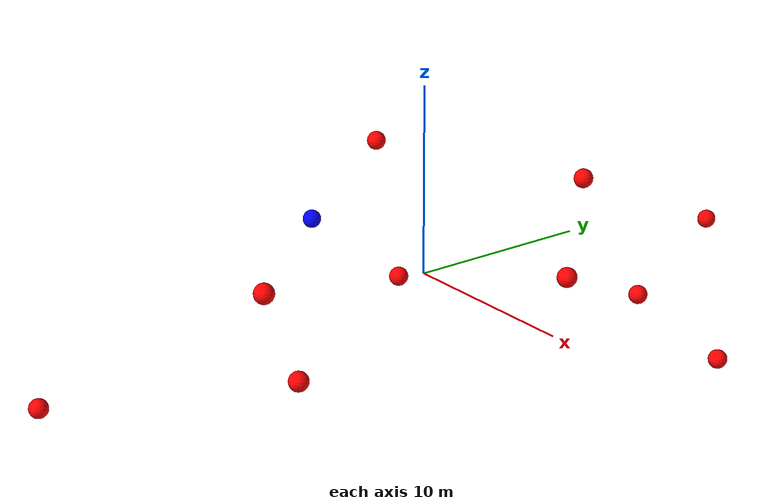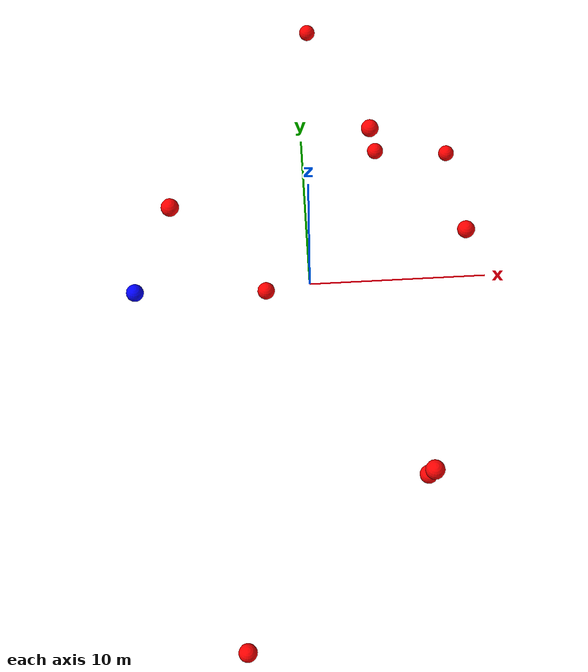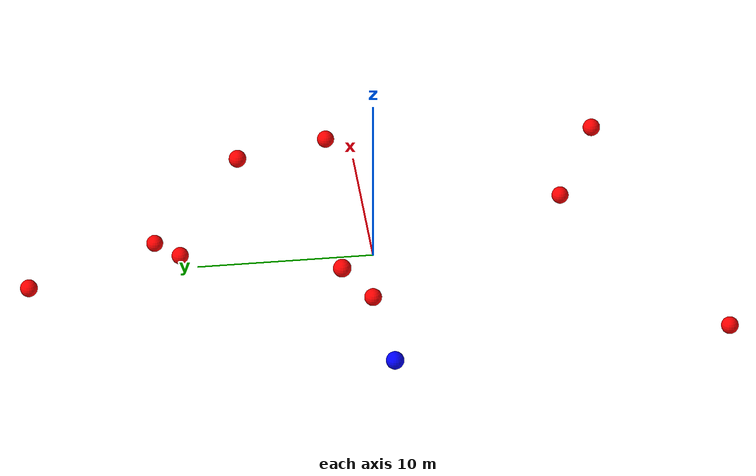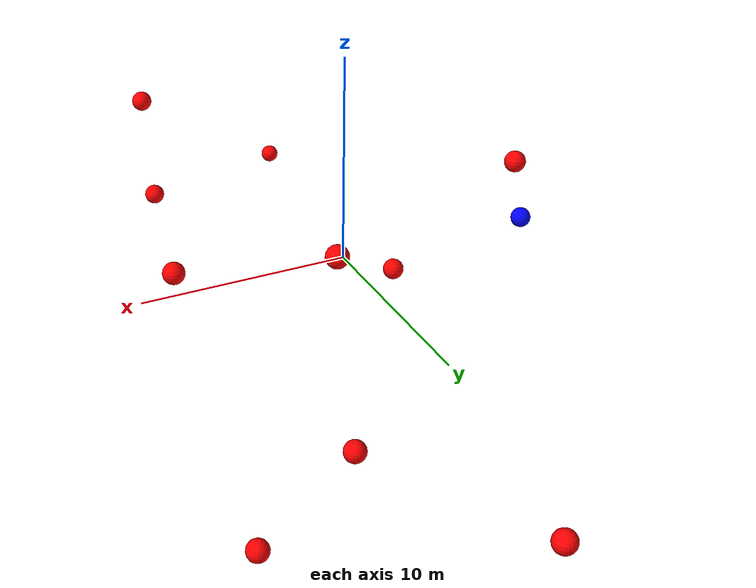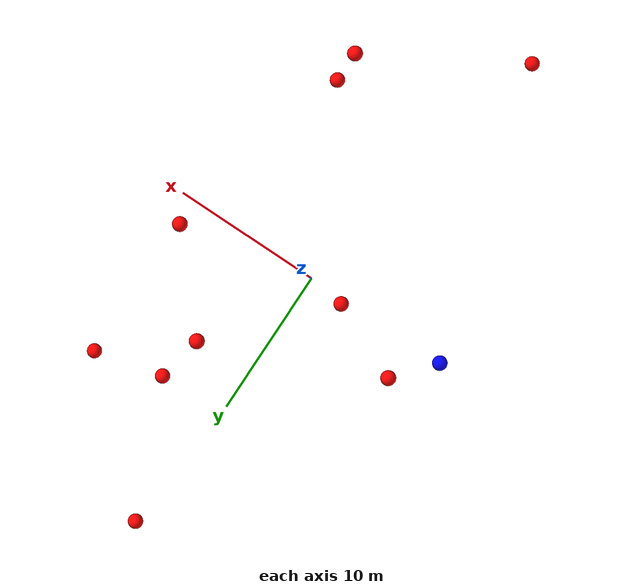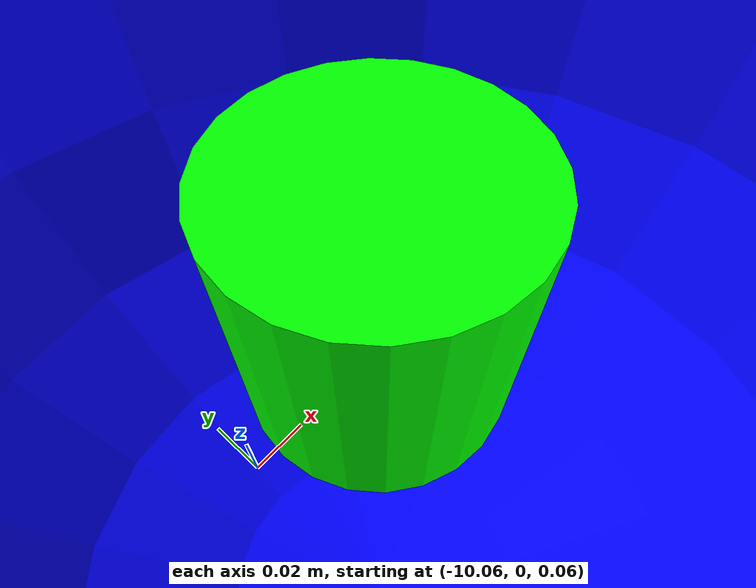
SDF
<?xml version="1.0" ?>
<sdf version="1.8">
    <world name="3d_world">
        <physics name="1ms" type="ode">
            <max_step_size>0.001</max_step_size>
            <real_time_factor>1.0</real_time_factor>
            <real_time_update_rate>1000.0</real_time_update_rate>
        </physics>
        <gravity>0 0 0</gravity>

        <plugin
            filename="gz-sim-physics-system"
            name="gz::sim::v8::systems::Physics">
        </plugin>
        <plugin
            filename="libignition-gazebo-user-commands-system.so"
            name="ignition::gazebo::systems::UserCommands">
        </plugin>
        <plugin
            filename="gz-sim-scene-broadcaster-system"
            name="gz::sim::systems::SceneBroadcaster">
        </plugin>
        <plugin
            filename="gz-sim-sensors-system"
            name="gz::sim::systems::Sensors">
            <render_engine>ogre2</render_engine>
        </plugin>

        <light type="directional" name="sun">
            <cast_shadows>true</cast_shadows>
            <pose>0 0 10 0 0 0</pose>
            <diffuse>0.8 0.8 0.8 1</diffuse>
            <specular>0.2 0.2 0.2 1</specular>
            <attenuation>
                <range>1000</range>
                <constant>0.9</constant>
                <linear>0.01</linear>
                <quadratic>0.001</quadratic>
            </attenuation>
            <direction>-0.5 0.1 -0.9</direction>
        </light>

        <!-- AGENTE -->
        <model name='agente' canonical_link='chassis'>
            <pose relative_to='world'>-10.0 0 0.0 0 0 0</pose>
            <link name='chassis'>
                <pose relative_to='__model__'>0.0 0 0.0 0 0 0</pose>
                <inertial>
                    <mass>1.14395</mass>
                    <inertia>
                        <ixx>0.095329</ixx>
                        <ixy>0</ixy>
                        <ixz>0</ixz>
                        <iyy>0.381317</iyy>
                        <iyz>0</iyz>
                        <izz>0.476646</izz>
                    </inertia>
                </inertial>
                <visual name='visual'>
                    <geometry>
                        <sphere>
                            <radius>0.5</radius>
                        </sphere>
                    </geometry>
                    <material>
                        <ambient>0.0 0.0 1.0 1</ambient>
                        <diffuse>0.0 0.0 1.0 1</diffuse>
                        <specular>0.0 0.0 1.0 1</specular>
                    </material>
                </visual>
                <collision name='collision'>
                    <geometry>
                        <sphere>
                            <radius>0.5</radius>
                        </sphere>
                    </geometry>
                </collision>
                <enable_gravity>false</enable_gravity>
            </link>

            <link name='lidar_link'>
                <pose relative_to='chassis'>0.0 0 0.1 0 0 0</pose>
                <inertial>
                    <mass>0.1</mass>
                    <inertia>
                        <ixx>0.000166667</ixx>
                        <iyy>0.000166667</iyy>
                        <izz>0.000166667</izz>
                    </inertia>
                </inertial>
                <collision name='collision'>
                    <geometry>
                        <cylinder>
                            <radius>0.05</radius>
                            <length>0.1</length>
                        </cylinder>
                    </geometry>
                </collision>
                <visual name='visual'>
                    <geometry>
                        <cylinder>
                            <radius>0.05</radius>
                            <length>0.1</length>
                        </cylinder>
                    </geometry>
                    <material>
                        <ambient>0.0 1.0 0.0 1</ambient>
                        <diffuse>0.0 1.0 0.0 1</diffuse>
                        <specular>0.0 1.0 0.0 1</specular>
                    </material>
                </visual>
                <sensor name="lidar" type="gpu_lidar">
                    <topic>scan</topic>
                    <update_rate>10</update_rate>
                    <lidar>
                        <scan>
                            <horizontal>
                                <samples>5000</samples>
                                <resolution>1</resolution>
                                <min_angle>-3.14159</min_angle>
                                <max_angle>3.14159</max_angle>
                            </horizontal>
                        </scan>
                        <range>
                            <min>0.1</min>
                            <max>10.0</max>
                            <resolution>0.01</resolution>
                        </range>
                    </lidar>
                    <visualize>true</visualize>
                    <always_on>true</always_on>
                    <update_rate>10</update_rate>
                    <pose_frame>lidar</pose_frame>
                </sensor>
                <enable_gravity>false</enable_gravity>
            </link>

            <joint name="lidar_joint" type="fixed">
                <parent>chassis</parent>
                <child>lidar_link</child>
            </joint>

            <plugin
                filename="ignition-gazebo-joint-state-publisher-system"
                name="ignition::gazebo::systems::JointStatePublisher">
            </plugin>
            <plugin
                filename="ignition-gazebo-odometry-publisher-system"
                name="ignition::gazebo::systems::OdometryPublisher">
                <dimensions>3</dimensions>
            </plugin>
            <plugin
                filename="ignition-gazebo-velocity-control-system"
                name="ignition::gazebo::systems::VelocityControl">
                <initial_linear>0.0 0 0</initial_linear>
                <initial_angular>0 0 0.0</initial_angular>
            </plugin>
            <plugin
                filename="libignition-gazebo-pose-publisher-system.so"
                name="ignition::gazebo::systems::PosePublisher">
                <topic>/agente/pose</topic>
                <frame_id>agente</frame_id>
                <update_rate>30</update_rate>
            </plugin>
        </model>

        <!-- OBSTACLE 1 -->
        <model name='obstacle_1' canonical_link='obstacle'>
            <static>false</static>
            <pose relative_to='world'>-2.55 0.32 -1.07 0 0 0</pose>
            <link name='obstacle'>
                <pose relative_to='__model__'>0.0 0 0.0 0 0 0</pose>
                <visual name='visual'>
                    <geometry>
                        <sphere>
                            <radius>0.50</radius>
                        </sphere>
                    </geometry>
                    <material>
                        <ambient>1.0 0.0 0.0 1</ambient>
                        <diffuse>1.0 0.0 0.0 1</diffuse>
                        <specular>1.0 0.0 0.0 1</specular>
                    </material>
                </visual>
                <collision name='collision'>
                    <geometry>
                        <sphere>
                            <radius>0.50</radius>
                        </sphere>
                    </geometry>
                </collision>
                <enable_gravity>false</enable_gravity>
            </link>

            <plugin
                filename="ignition-gazebo-velocity-control-system"
                name="ignition::gazebo::systems::VelocityControl">
                <initial_linear>-1.07 -0.15 0.51</initial_linear>
                <initial_angular>0 0 0</initial_angular>
            </plugin>

            <plugin
                filename="ignition-gazebo-odometry-publisher-system"
                name="ignition::gazebo::systems::OdometryPublisher">
                <dimensions>3</dimensions>
            </plugin>
        </model>

        <!-- OBSTACLE 2 -->
        <model name='obstacle_2' canonical_link='obstacle'>
            <static>false</static>
            <pose relative_to='world'>-7.54 2.60 4.65 0 0 0</pose>
            <link name='obstacle'>
                <pose relative_to='__model__'>0.0 0 0.0 0 0 0</pose>
                <visual name='visual'>
                    <geometry>
                        <sphere>
                            <radius>0.50</radius>
                        </sphere>
                    </geometry>
                    <material>
                        <ambient>1.0 0.0 0.0 1</ambient>
                        <diffuse>1.0 0.0 0.0 1</diffuse>
                        <specular>1.0 0.0 0.0 1</specular>
                    </material>
                </visual>
                <collision name='collision'>
                    <geometry>
                        <sphere>
                            <radius>0.50</radius>
                        </sphere>
                    </geometry>
                </collision>
                <enable_gravity>false</enable_gravity>
            </link>

            <plugin
                filename="ignition-gazebo-velocity-control-system"
                name="ignition::gazebo::systems::VelocityControl">
                <initial_linear>1.81 -0.41 -0.74</initial_linear>
                <initial_angular>0 0 0</initial_angular>
            </plugin>

            <plugin
                filename="ignition-gazebo-odometry-publisher-system"
                name="ignition::gazebo::systems::OdometryPublisher">
                <dimensions>3</dimensions>
            </plugin>
        </model>

        <!-- OBSTACLE 3 -->
        <model name='obstacle_3' canonical_link='obstacle'>
            <static>false</static>
            <pose relative_to='world'>3.82 7.32 4.66 0 0 0</pose>
            <link name='obstacle'>
                <pose relative_to='__model__'>0.0 0 0.0 0 0 0</pose>
                <visual name='visual'>
                    <geometry>
                        <sphere>
                            <radius>0.50</radius>
                        </sphere>
                    </geometry>
                    <material>
                        <ambient>1.0 0.0 0.0 1</ambient>
                        <diffuse>1.0 0.0 0.0 1</diffuse>
                        <specular>1.0 0.0 0.0 1</specular>
                    </material>
                </visual>
                <collision name='collision'>
                    <geometry>
                        <sphere>
                            <radius>0.50</radius>
                        </sphere>
                    </geometry>
                </collision>
                <enable_gravity>false</enable_gravity>
            </link>

            <plugin
                filename="ignition-gazebo-velocity-control-system"
                name="ignition::gazebo::systems::VelocityControl">
                <initial_linear>0.49 -1.06 -0.68</initial_linear>
                <initial_angular>0 0 0</initial_angular>
            </plugin>

            <plugin
                filename="ignition-gazebo-odometry-publisher-system"
                name="ignition::gazebo::systems::OdometryPublisher">
                <dimensions>3</dimensions>
            </plugin>
        </model>

        <!-- OBSTACLE 4 -->
        <model name='obstacle_4' canonical_link='obstacle'>
            <static>false</static>
            <pose relative_to='world'>8.93 1.76 2.23 0 0 0</pose>
            <link name='obstacle'>
                <pose relative_to='__model__'>0.0 0 0.0 0 0 0</pose>
                <visual name='visual'>
                    <geometry>
                        <sphere>
                            <radius>0.50</radius>
                        </sphere>
                    </geometry>
                    <material>
                        <ambient>1.0 0.0 0.0 1</ambient>
                        <diffuse>1.0 0.0 0.0 1</diffuse>
                        <specular>1.0 0.0 0.0 1</specular>
                    </material>
                </visual>
                <collision name='collision'>
                    <geometry>
                        <sphere>
                            <radius>0.50</radius>
                        </sphere>
                    </geometry>
                </collision>
                <enable_gravity>false</enable_gravity>
            </link>

            <plugin
                filename="ignition-gazebo-velocity-control-system"
                name="ignition::gazebo::systems::VelocityControl">
                <initial_linear>-0.41 -0.27 -0.34</initial_linear>
                <initial_angular>0 0 0</initial_angular>
            </plugin>

            <plugin
                filename="ignition-gazebo-odometry-publisher-system"
                name="ignition::gazebo::systems::OdometryPublisher">
                <dimensions>3</dimensions>
            </plugin>
        </model>

        <!-- OBSTACLE 5 -->
        <model name='obstacle_5' canonical_link='obstacle'>
            <static>false</static>
            <pose relative_to='world'>5.71 -11.72 -0.66 0 0 0</pose>
            <link name='obstacle'>
                <pose relative_to='__model__'>0.0 0 0.0 0 0 0</pose>
                <visual name='visual'>
                    <geometry>
                        <sphere>
                            <radius>0.50</radius>
                        </sphere>
                    </geometry>
                    <material>
                        <ambient>1.0 0.0 0.0 1</ambient>
                        <diffuse>1.0 0.0 0.0 1</diffuse>
                        <specular>1.0 0.0 0.0 1</specular>
                    </material>
                </visual>
                <collision name='collision'>
                    <geometry>
                        <sphere>
                            <radius>0.50</radius>
                        </sphere>
                    </geometry>
                </collision>
                <enable_gravity>false</enable_gravity>
            </link>

            <plugin
                filename="ignition-gazebo-velocity-control-system"
                name="ignition::gazebo::systems::VelocityControl">
                <initial_linear>-0.24 1.98 0.11</initial_linear>
                <initial_angular>0 0 0</initial_angular>
            </plugin>

            <plugin
                filename="ignition-gazebo-odometry-publisher-system"
                name="ignition::gazebo::systems::OdometryPublisher">
                <dimensions>3</dimensions>
            </plugin>
        </model>

        <!-- OBSTACLE 6 -->
        <model name='obstacle_6' canonical_link='obstacle'>
            <static>false</static>
            <pose relative_to='world'>4.63 10.76 -2.36 0 0 0</pose>
            <link name='obstacle'>
                <pose relative_to='__model__'>0.0 0 0.0 0 0 0</pose>
                <visual name='visual'>
                    <geometry>
                        <sphere>
                            <radius>0.50</radius>
                        </sphere>
                    </geometry>
                    <material>
                        <ambient>1.0 0.0 0.0 1</ambient>
                        <diffuse>1.0 0.0 0.0 1</diffuse>
                        <specular>1.0 0.0 0.0 1</specular>
                    </material>
                </visual>
                <collision name='collision'>
                    <geometry>
                        <sphere>
                            <radius>0.50</radius>
                        </sphere>
                    </geometry>
                </collision>
                <enable_gravity>false</enable_gravity>
            </link>

            <plugin
                filename="ignition-gazebo-velocity-control-system"
                name="ignition::gazebo::systems::VelocityControl">
                <initial_linear>-0.29 -1.93 0.42</initial_linear>
                <initial_angular>0 0 0</initial_angular>
            </plugin>

            <plugin
                filename="ignition-gazebo-odometry-publisher-system"
                name="ignition::gazebo::systems::OdometryPublisher">
                <dimensions>3</dimensions>
            </plugin>
        </model>

        <!-- OBSTACLE 7 -->
        <model name='obstacle_7' canonical_link='obstacle'>
            <static>false</static>
            <pose relative_to='world'>5.53 -13.38 4.07 0 0 0</pose>
            <link name='obstacle'>
                <pose relative_to='__model__'>0.0 0 0.0 0 0 0</pose>
                <visual name='visual'>
                    <geometry>
                        <sphere>
                            <radius>0.50</radius>
                        </sphere>
                    </geometry>
                    <material>
                        <ambient>1.0 0.0 0.0 1</ambient>
                        <diffuse>1.0 0.0 0.0 1</diffuse>
                        <specular>1.0 0.0 0.0 1</specular>
                    </material>
                </visual>
                <collision name='collision'>
                    <geometry>
                        <sphere>
                            <radius>0.50</radius>
                        </sphere>
                    </geometry>
                </collision>
                <enable_gravity>false</enable_gravity>
            </link>

            <plugin
                filename="ignition-gazebo-velocity-control-system"
                name="ignition::gazebo::systems::VelocityControl">
                <initial_linear>-0.43 1.87 -0.57</initial_linear>
                <initial_angular>0 0 0</initial_angular>
            </plugin>

            <plugin
                filename="ignition-gazebo-odometry-publisher-system"
                name="ignition::gazebo::systems::OdometryPublisher">
                <dimensions>3</dimensions>
            </plugin>
        </model>

        <!-- OBSTACLE 8 -->
        <model name='obstacle_8' canonical_link='obstacle'>
            <static>false</static>
            <pose relative_to='world'>0.83 19.59 -1.21 0 0 0</pose>
            <link name='obstacle'>
                <pose relative_to='__model__'>0.0 0 0.0 0 0 0</pose>
                <visual name='visual'>
                    <geometry>
                        <sphere>
                            <radius>0.50</radius>
                        </sphere>
                    </geometry>
                    <material>
                        <ambient>1.0 0.0 0.0 1</ambient>
                        <diffuse>1.0 0.0 0.0 1</diffuse>
                        <specular>1.0 0.0 0.0 1</specular>
                    </material>
                </visual>
                <collision name='collision'>
                    <geometry>
                        <sphere>
                            <radius>0.50</radius>
                        </sphere>
                    </geometry>
                </collision>
                <enable_gravity>false</enable_gravity>
            </link>

            <plugin
                filename="ignition-gazebo-velocity-control-system"
                name="ignition::gazebo::systems::VelocityControl">
                <initial_linear>0.59 -1.91 0.12</initial_linear>
                <initial_angular>0 0 0</initial_angular>
            </plugin>

            <plugin
                filename="ignition-gazebo-odometry-publisher-system"
                name="ignition::gazebo::systems::OdometryPublisher">
                <dimensions>3</dimensions>
            </plugin>
        </model>

        <!-- OBSTACLE 9 -->
        <model name='obstacle_9' canonical_link='obstacle'>
            <static>false</static>
            <pose relative_to='world'>9.42 12.01 -4.71 0 0 0</pose>
            <link name='obstacle'>
                <pose relative_to='__model__'>0.0 0 0.0 0 0 0</pose>
                <visual name='visual'>
                    <geometry>
                        <sphere>
                            <radius>0.50</radius>
                        </sphere>
                    </geometry>
                    <material>
                        <ambient>1.0 0.0 0.0 1</ambient>
                        <diffuse>1.0 0.0 0.0 1</diffuse>
                        <specular>1.0 0.0 0.0 1</specular>
                    </material>
                </visual>
                <collision name='collision'>
                    <geometry>
                        <sphere>
                            <radius>0.50</radius>
                        </sphere>
                    </geometry>
                </collision>
                <enable_gravity>false</enable_gravity>
            </link>

            <plugin
                filename="ignition-gazebo-velocity-control-system"
                name="ignition::gazebo::systems::VelocityControl">
                <initial_linear>-0.76 -1.72 0.67</initial_linear>
                <initial_angular>0 0 0</initial_angular>
            </plugin>

            <plugin
                filename="ignition-gazebo-odometry-publisher-system"
                name="ignition::gazebo::systems::OdometryPublisher">
                <dimensions>3</dimensions>
            </plugin>
        </model>

        <!-- OBSTACLE 10 -->
        <model name='obstacle_10' canonical_link='obstacle'>
            <static>false</static>
            <pose relative_to='world'>-4.36 -19.95 -3.51 0 0 0</pose>
            <link name='obstacle'>
                <pose relative_to='__model__'>0.0 0 0.0 0 0 0</pose>
                <visual name='visual'>
                    <geometry>
                        <sphere>
                            <radius>0.50</radius>
                        </sphere>
                    </geometry>
                    <material>
                        <ambient>1.0 0.0 0.0 1</ambient>
                        <diffuse>1.0 0.0 0.0 1</diffuse>
                        <specular>1.0 0.0 0.0 1</specular>
                    </material>
                </visual>
                <collision name='collision'>
                    <geometry>
                        <sphere>
                            <radius>0.50</radius>
                        </sphere>
                    </geometry>
                </collision>
                <enable_gravity>false</enable_gravity>
            </link>

            <plugin
                filename="ignition-gazebo-velocity-control-system"
                name="ignition::gazebo::systems::VelocityControl">
                <initial_linear>0.79 1.81 0.32</initial_linear>
                <initial_angular>0 0 0</initial_angular>
            </plugin>

            <plugin
                filename="ignition-gazebo-odometry-publisher-system"
                name="ignition::gazebo::systems::OdometryPublisher">
                <dimensions>3</dimensions>
            </plugin>
        </model>

    </world>
</sdf>
